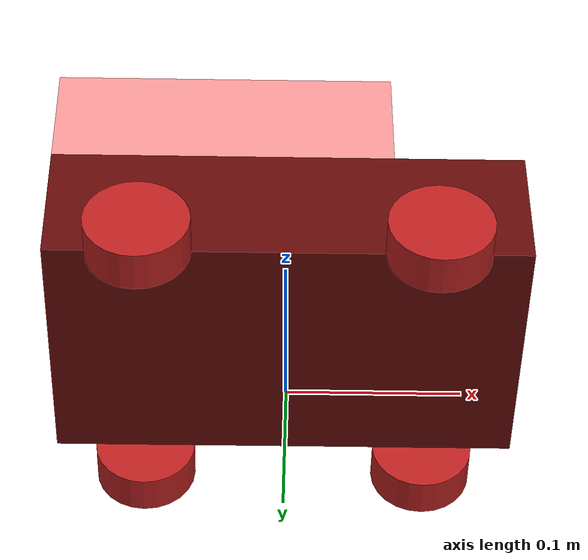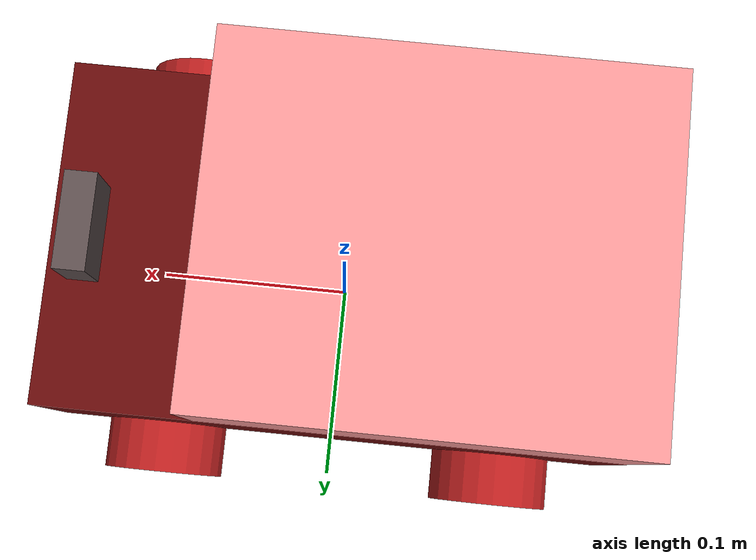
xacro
<?xml version="1.0" encoding="utf-8"?>

<robot name="mycar" xmlns:xacro="http://wiki.ros.org/xacro">

  <xacro:property name="PI" value="3.1415926"/>
  <xacro:property name="Track" value="0.1682"/>
  <xacro:property name="WheelBase" value="0.189"/>
  <xacro:property name="WheelLen" value="0.025"/>

  <link name="base_link">
    <visual>
      <geometry>
        <box size="0.276 ${WheelBase-WheelLen} 0.08"/>
      </geometry>
      <origin xyz="0 0 ${0.08/2+0.03}" rpy="0 0 0"/>
      <material name="rgba(102,10,10,1)">
        <color rgba="${102/255} ${10/255} ${10/255} 1" />
      </material>
    </visual>
  </link>

  <link name="board_link">
    <visual>
      <geometry>
        <box size="0.200 ${WheelBase-WheelLen} ${0.150-0.08}"/>
      </geometry>
      <origin xyz="0 0 ${(0.150-0.08)/2}" rpy="0 0 0"/>
      <material name="rgba(246,152,152,1)">
        <color rgba="${246/255} ${152/255} ${152/255} 1" />
      </material>
    </visual>
  </link>

  <link name="camera" >
    <visual>
      <geometry>
        <box size="0.015 0.045 0.03"/>
      </geometry>
      <origin xyz="0 0 ${(0.03)/2}" rpy="0 0 0"/>
      <material name="rgba(93,78,78,1)">
        <color rgba="${93/255} ${78/255} ${78/255} 1" />
      </material>
    </visual>
  </link>

  <joint name="camera_joint" type="fixed">
    <parent link="base_link" />
    <child link="camera" />
    <origin xyz="${(0.276-0.015)/2-0.01} 0 ${0.08+0.03}" rpy="0 0 0" />
  </joint>

  <joint name="board_joint" type="fixed">
    <parent link="base_link" />
    <child link="board_link" />
    <origin xyz="${-(0.276-0.2)/2} 0 ${0.08+0.03}" rpy="0 0 0" />
    <axis xyz="0 1 0" />
  </joint>

  <link name="down_left_Link">
    <visual>
      <origin xyz="0 ${-WheelLen/2+0.025/2} 0" rpy="${-PI/2} 0 0" />
      <geometry>
        <cylinder radius="0.03" length="0.025" />
      </geometry>
      <material name="">
        <color rgba="0.7450980392156863 0.12941176470588237 0.12941176470588237 1" />
      </material>
    </visual>
  </link>

  <joint name="down_left_joint" type="continuous">
    <parent link="base_link" />
    <child link="down_left_Link" />
    <origin xyz="${-Track/2} ${WheelBase/2} ${0.03}" rpy="0 0 0" />
    <axis xyz="0 1 0" />
  </joint>

  <link name="down_right_Link">
    <visual>
      <origin xyz="0 ${WheelLen/2-0.025/2} 0" rpy="${PI/2} 0 0" />
      <geometry>
        <cylinder radius="0.03" length="0.025"/>
      </geometry>
      <material name="">
        <color rgba="0.7450980392156863 0.12941176470588237 0.12941176470588237 1" />
      </material>
    </visual>
  </link>

  <joint name="down_right_joint" type="continuous">
    <parent link="base_link" />
    <child link="down_right_Link" />
    <origin xyz="${-Track/2} ${-WheelBase/2} ${0.03}" rpy="0 0 0" />
    <axis xyz="0 -1 0" />
  </joint>

  <link name="up_left_Link">
    <visual>
      <origin xyz="0 ${-WheelLen/2+0.025/2} 0" rpy="${-PI/2} 0 0" />
      <geometry>
        <cylinder radius="0.03" length="0.025"/>
      </geometry>
      <material name="">
        <color rgba="0.7450980392156863 0.12941176470588237 0.12941176470588237 1" />
      </material>
    </visual>
  </link>

  <joint name="up_left_joint" type="continuous">
    <parent link="base_link" />
    <child  link="up_left_Link" />
    <origin xyz="${Track/2} ${WheelBase/2} ${0.03}" rpy="0 0 0" />
    <axis xyz="0 1 0" />
  </joint>

  <link name="up_right_Link">
    <visual>
      <origin xyz="0 ${WheelLen/2-0.025/2} 0" rpy="${PI/2} 0 0" />
      <geometry>
        <cylinder radius="0.03" length="0.025"/>
      </geometry>
      <material name="">
        <color rgba="0.7450980392156863 0.12941176470588237 0.12941176470588237 1" />
      </material>
    </visual>
  </link>

  <joint name="up_right_joint" type="continuous">
    <parent link="base_link" />
    <child link="up_right_Link" />
    <origin xyz="${Track/2} ${-WheelBase/2} ${0.03}" rpy="0 0 0" />
    <axis  xyz="0 -1 0" />
  </joint>

  <link name="laser_link">
    <visual>
      <geometry>
        <cylinder length="0.05" radius="0.03"/>
      </geometry>
      <origin xyz="0 0 0" rpy="0 0 0"/>
      <material name="laser_color">
        <color rgba="0.4 0.4 0.4 1"/>
      </material>
    </visual>
  </link>

  <joint name="laser_joint" type="fixed">
    <parent link="base_link"/>
    <child link="laser_link"/>
    <origin xyz="0.04 0 0.08" rpy="0 0 0"/>
  </joint>

</robot>
